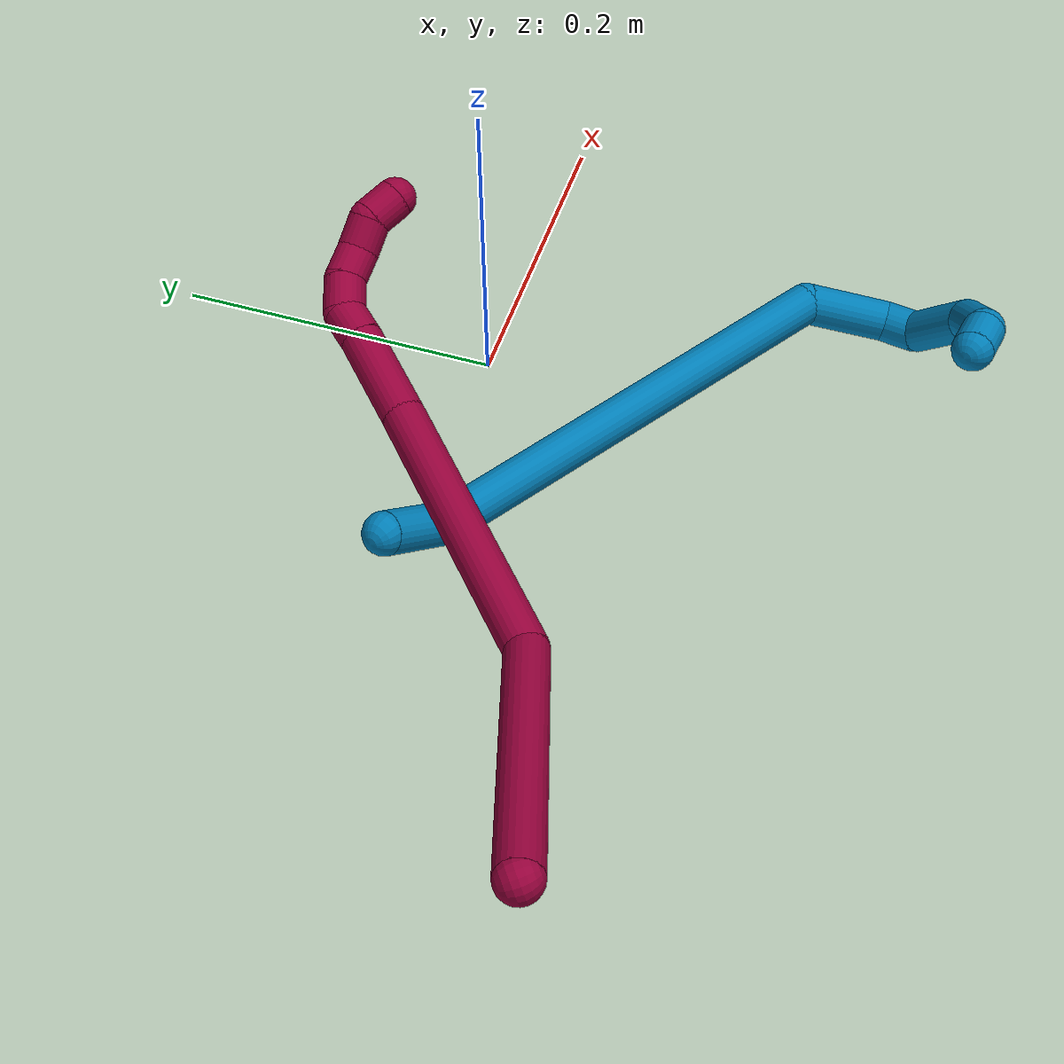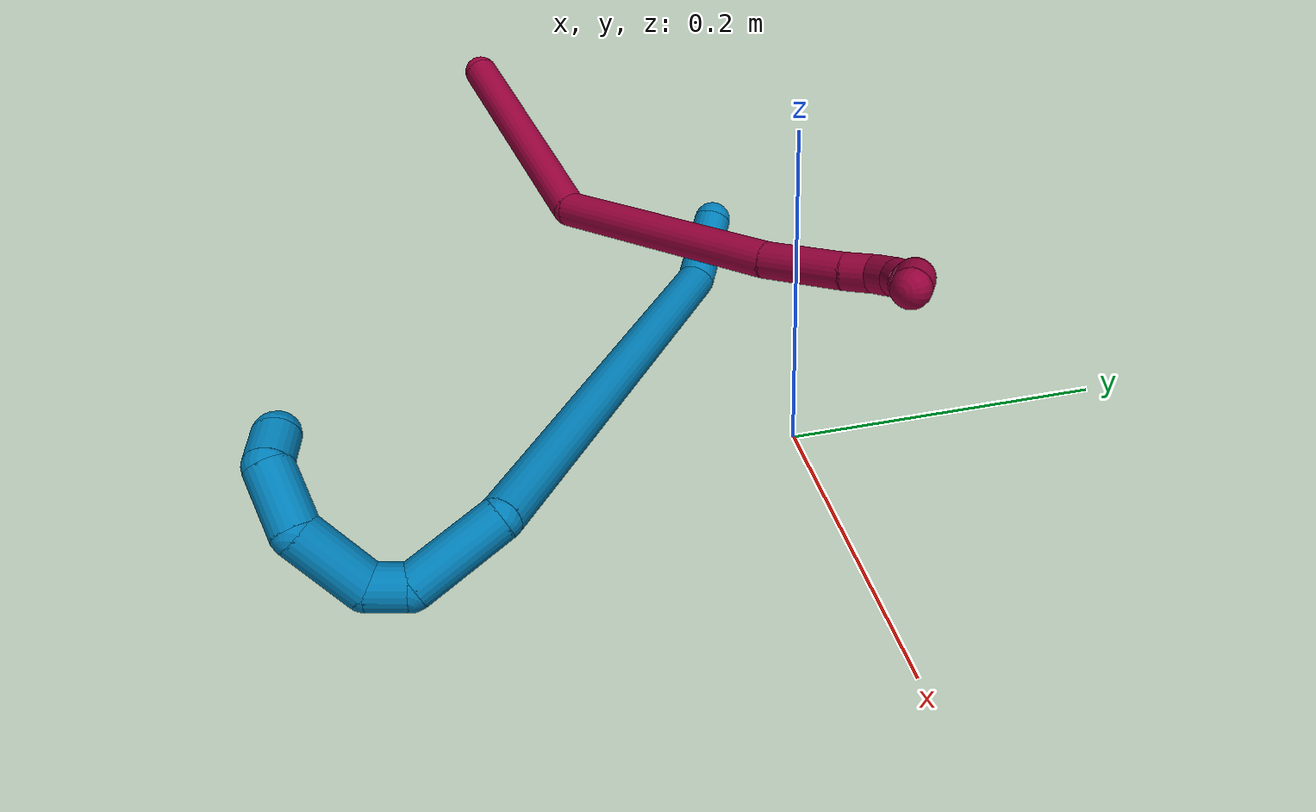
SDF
<sdf version="1.7">
 <world name="default">
  <model name="8">
   <static>0</static>
   <link name="8">
    <collision name="collision-cylinder-e_1_1_4">
     <pose>0.07625 0.030972 0.019901 -0.999687 1.12099 -0.660412</pose>
     <geometry><cylinder><radius>0.0125</radius><length>0.169344</length></cylinder></geometry>
     <surface>
      <friction><ode><mu>1.16</mu><mu2>1.16</mu2><slip1>0</slip1><slip2>0</slip2></ode></friction>
      <contact><ode><kp>1e+06</kp><kd>1</kd><max_vel>0</max_vel><min_depth>0.001</min_depth></ode></contact>
     </surface>
    </collision>
    <visual name="visual-cylinder-e_1_1_4">
     <pose>0.07625 0.030972 0.019901 -0.999687 1.12099 -0.660412</pose>
     <geometry><cylinder><radius>0.0125</radius><length>0.169344</length></cylinder></geometry>
     <material><ambient>0.584314 0 0.227451 1</ambient></material>
    </visual>
    <collision name="collision-cylinder-e_2_4_5">
     <pose>0.207826 0.125162 0.030762 -1.71281 0.713909 -0.812269</pose>
     <geometry><cylinder><radius>0.0125</radius><length>0.168987</length></cylinder></geometry>
     <surface>
      <friction><ode><mu>1.16</mu><mu2>1.16</mu2><slip1>0</slip1><slip2>0</slip2></ode></friction>
      <contact><ode><kp>1e+06</kp><kd>1</kd><max_vel>0</max_vel><min_depth>0.001</min_depth></ode></contact>
     </surface>
    </collision>
    <visual name="visual-cylinder-e_2_4_5">
     <pose>0.207826 0.125162 0.030762 -1.71281 0.713909 -0.812269</pose>
     <geometry><cylinder><radius>0.0125</radius><length>0.168987</length></cylinder></geometry>
     <material><ambient>0.584314 0 0.227451 1</ambient></material>
    </visual>
    <collision name="collision-cylinder-e_3_5_6">
     <pose>0.280141 0.212102 0.018007 -1.7262 0.615781 -0.711755</pose>
     <geometry><cylinder><radius>0.0125</radius><length>0.058827</length></cylinder></geometry>
     <surface>
      <friction><ode><mu>1.16</mu><mu2>1.16</mu2><slip1>0</slip1><slip2>0</slip2></ode></friction>
      <contact><ode><kp>1e+06</kp><kd>1</kd><max_vel>0</max_vel><min_depth>0.001</min_depth></ode></contact>
     </surface>
    </collision>
    <visual name="visual-cylinder-e_3_5_6">
     <pose>0.280141 0.212102 0.018007 -1.7262 0.615781 -0.711755</pose>
     <geometry><cylinder><radius>0.0125</radius><length>0.058827</length></cylinder></geometry>
     <material><ambient>0.584314 0 0.227451 1</ambient></material>
    </visual>
    <collision name="collision-cylinder-e_4_6_7">
     <pose>0.302781 0.244368 0.012241 -1.80623 0.571496 -0.713325</pose>
     <geometry><cylinder><radius>0.0125</radius><length>0.020894</length></cylinder></geometry>
     <surface>
      <friction><ode><mu>1.16</mu><mu2>1.16</mu2><slip1>0</slip1><slip2>0</slip2></ode></friction>
      <contact><ode><kp>1e+06</kp><kd>1</kd><max_vel>0</max_vel><min_depth>0.001</min_depth></ode></contact>
     </surface>
    </collision>
    <visual name="visual-cylinder-e_4_6_7">
     <pose>0.302781 0.244368 0.012241 -1.80623 0.571496 -0.713325</pose>
     <geometry><cylinder><radius>0.0125</radius><length>0.020894</length></cylinder></geometry>
     <material><ambient>0.584314 0 0.227451 1</ambient></material>
    </visual>
    <collision name="collision-cylinder-e_5_7_8">
     <pose>0.313354 0.26187 0.013621 -1.20512 0.474114 -0.329384</pose>
     <geometry><cylinder><radius>0.0125</radius><length>0.021562</length></cylinder></geometry>
     <surface>
      <friction><ode><mu>1.16</mu><mu2>1.16</mu2><slip1>0</slip1><slip2>0</slip2></ode></friction>
      <contact><ode><kp>1e+06</kp><kd>1</kd><max_vel>0</max_vel><min_depth>0.001</min_depth></ode></contact>
     </surface>
    </collision>
    <visual name="visual-cylinder-e_5_7_8">
     <pose>0.313354 0.26187 0.013621 -1.20512 0.474114 -0.329384</pose>
     <geometry><cylinder><radius>0.0125</radius><length>0.021562</length></cylinder></geometry>
     <material><ambient>0.584314 0 0.227451 1</ambient></material>
    </visual>
    <collision name="collision-cylinder-e_6_8_9">
     <pose>0.322144 0.277461 0.02352 -0.797909 0.395512 -0.168541</pose>
     <geometry><cylinder><radius>0.0125</radius><length>0.020081</length></cylinder></geometry>
     <surface>
      <friction><ode><mu>1.16</mu><mu2>1.16</mu2><slip1>0</slip1><slip2>0</slip2></ode></friction>
      <contact><ode><kp>1e+06</kp><kd>1</kd><max_vel>0</max_vel><min_depth>0.001</min_depth></ode></contact>
     </surface>
    </collision>
    <visual name="visual-cylinder-e_6_8_9">
     <pose>0.322144 0.277461 0.02352 -0.797909 0.395512 -0.168541</pose>
     <geometry><cylinder><radius>0.0125</radius><length>0.020081</length></cylinder></geometry>
     <material><ambient>0.584314 0 0.227451 1</ambient></material>
    </visual>
    <collision name="collision-cylinder-e_7_9_10">
     <pose>0.326221 0.291688 0.036563 -0.857348 0.020756 -0.009486</pose>
     <geometry><cylinder><radius>0.0125</radius><length>0.020093</length></cylinder></geometry>
     <surface>
      <friction><ode><mu>1.16</mu><mu2>1.16</mu2><slip1>0</slip1><slip2>0</slip2></ode></friction>
      <contact><ode><kp>1e+06</kp><kd>1</kd><max_vel>0</max_vel><min_depth>0.001</min_depth></ode></contact>
     </surface>
    </collision>
    <visual name="visual-cylinder-e_7_9_10">
     <pose>0.326221 0.291688 0.036563 -0.857348 0.020756 -0.009486</pose>
     <geometry><cylinder><radius>0.0125</radius><length>0.020093</length></cylinder></geometry>
     <material><ambient>0.584314 0 0.227451 1</ambient></material>
    </visual>
    <collision name="collision-cylinder-e_8_10_2">
     <pose>0.329068 0.302551 0.052327 -0.341649 0.264177 -0.045831</pose>
     <geometry><cylinder><radius>0.0125</radius><length>0.020211</length></cylinder></geometry>
     <surface>
      <friction><ode><mu>1.16</mu><mu2>1.16</mu2><slip1>0</slip1><slip2>0</slip2></ode></friction>
      <contact><ode><kp>1e+06</kp><kd>1</kd><max_vel>0</max_vel><min_depth>0.001</min_depth></ode></contact>
     </surface>
    </collision>
    <visual name="visual-cylinder-e_8_10_2">
     <pose>0.329068 0.302551 0.052327 -0.341649 0.264177 -0.045831</pose>
     <geometry><cylinder><radius>0.0125</radius><length>0.020211</length></cylinder></geometry>
     <material><ambient>0.584314 0 0.227451 1</ambient></material>
    </visual>
    <collision name="collision-sphere-2">
     <pose>0.331707 0.30582 0.061519 0 -0 0</pose>
     <geometry><sphere><radius>0.0125</radius></sphere></geometry>
     <surface>
      <friction><ode><mu>1.16</mu><mu2>1.16</mu2><slip1>0</slip1><slip2>0</slip2></ode></friction>
      <contact><ode><kp>1e+06</kp><kd>1</kd><max_vel>0</max_vel><min_depth>0.001</min_depth></ode></contact>
     </surface>
    </collision>
    <visual name="visual-sphere-2">
     <pose>0.331707 0.30582 0.061519 0 -0 0</pose>
     <geometry><sphere><radius>0.0125</radius></sphere></geometry>
     <material><ambient>0.584314 0 0.227451 1</ambient></material>
    </visual>
    <collision name="collision-sphere-10">
     <pose>0.32643 0.299283 0.043136 0 -0 0</pose>
     <geometry><sphere><radius>0.0125</radius></sphere></geometry>
     <surface>
      <friction><ode><mu>1.16</mu><mu2>1.16</mu2><slip1>0</slip1><slip2>0</slip2></ode></friction>
      <contact><ode><kp>1e+06</kp><kd>1</kd><max_vel>0</max_vel><min_depth>0.001</min_depth></ode></contact>
     </surface>
    </collision>
    <visual name="visual-sphere-10">
     <pose>0.32643 0.299283 0.043136 0 -0 0</pose>
     <geometry><sphere><radius>0.0125</radius></sphere></geometry>
     <material><ambient>0.584314 0 0.227451 1</ambient></material>
    </visual>
    <collision name="collision-sphere-9">
     <pose>0.326013 0.284094 0.029989 0 -0 0</pose>
     <geometry><sphere><radius>0.0125</radius></sphere></geometry>
     <surface>
      <friction><ode><mu>1.16</mu><mu2>1.16</mu2><slip1>0</slip1><slip2>0</slip2></ode></friction>
      <contact><ode><kp>1e+06</kp><kd>1</kd><max_vel>0</max_vel><min_depth>0.001</min_depth></ode></contact>
     </surface>
    </collision>
    <visual name="visual-sphere-9">
     <pose>0.326013 0.284094 0.029989 0 -0 0</pose>
     <geometry><sphere><radius>0.0125</radius></sphere></geometry>
     <material><ambient>0.584314 0 0.227451 1</ambient></material>
    </visual>
    <collision name="collision-sphere-4">
     <pose>0.1525 0.061944 0.039801 0 -0 0</pose>
     <geometry><sphere><radius>0.0125</radius></sphere></geometry>
     <surface>
      <friction><ode><mu>1.16</mu><mu2>1.16</mu2><slip1>0</slip1><slip2>0</slip2></ode></friction>
      <contact><ode><kp>1e+06</kp><kd>1</kd><max_vel>0</max_vel><min_depth>0.001</min_depth></ode></contact>
     </surface>
    </collision>
    <visual name="visual-sphere-4">
     <pose>0.1525 0.061944 0.039801 0 -0 0</pose>
     <geometry><sphere><radius>0.0125</radius></sphere></geometry>
     <material><ambient>0.584314 0 0.227451 1</ambient></material>
    </visual>
    <collision name="collision-sphere-1">
     <geometry><sphere><radius>0.0125</radius></sphere></geometry>
     <surface>
      <friction><ode><mu>1.16</mu><mu2>1.16</mu2><slip1>0</slip1><slip2>0</slip2></ode></friction>
      <contact><ode><kp>1e+06</kp><kd>1</kd><max_vel>0</max_vel><min_depth>0.001</min_depth></ode></contact>
     </surface>
    </collision>
    <visual name="visual-sphere-1">
     <geometry><sphere><radius>0.0125</radius></sphere></geometry>
     <material><ambient>0.584314 0 0.227451 1</ambient></material>
    </visual>
    <collision name="collision-sphere-8">
     <pose>0.318276 0.270828 0.017051 0 -0 0</pose>
     <geometry><sphere><radius>0.0125</radius></sphere></geometry>
     <surface>
      <friction><ode><mu>1.16</mu><mu2>1.16</mu2><slip1>0</slip1><slip2>0</slip2></ode></friction>
      <contact><ode><kp>1e+06</kp><kd>1</kd><max_vel>0</max_vel><min_depth>0.001</min_depth></ode></contact>
     </surface>
    </collision>
    <visual name="visual-sphere-8">
     <pose>0.318276 0.270828 0.017051 0 -0 0</pose>
     <geometry><sphere><radius>0.0125</radius></sphere></geometry>
     <material><ambient>0.584314 0 0.227451 1</ambient></material>
    </visual>
    <collision name="collision-sphere-5">
     <pose>0.263152 0.18838 0.021724 0 -0 0</pose>
     <geometry><sphere><radius>0.0125</radius></sphere></geometry>
     <surface>
      <friction><ode><mu>1.16</mu><mu2>1.16</mu2><slip1>0</slip1><slip2>0</slip2></ode></friction>
      <contact><ode><kp>1e+06</kp><kd>1</kd><max_vel>0</max_vel><min_depth>0.001</min_depth></ode></contact>
     </surface>
    </collision>
    <visual name="visual-sphere-5">
     <pose>0.263152 0.18838 0.021724 0 -0 0</pose>
     <geometry><sphere><radius>0.0125</radius></sphere></geometry>
     <material><ambient>0.584314 0 0.227451 1</ambient></material>
    </visual>
    <collision name="collision-sphere-6">
     <pose>0.29713 0.235823 0.014291 0 -0 0</pose>
     <geometry><sphere><radius>0.0125</radius></sphere></geometry>
     <surface>
      <friction><ode><mu>1.16</mu><mu2>1.16</mu2><slip1>0</slip1><slip2>0</slip2></ode></friction>
      <contact><ode><kp>1e+06</kp><kd>1</kd><max_vel>0</max_vel><min_depth>0.001</min_depth></ode></contact>
     </surface>
    </collision>
    <visual name="visual-sphere-6">
     <pose>0.29713 0.235823 0.014291 0 -0 0</pose>
     <geometry><sphere><radius>0.0125</radius></sphere></geometry>
     <material><ambient>0.584314 0 0.227451 1</ambient></material>
    </visual>
    <collision name="collision-sphere-7">
     <pose>0.308432 0.252912 0.010191 0 -0 0</pose>
     <geometry><sphere><radius>0.0125</radius></sphere></geometry>
     <surface>
      <friction><ode><mu>1.16</mu><mu2>1.16</mu2><slip1>0</slip1><slip2>0</slip2></ode></friction>
      <contact><ode><kp>1e+06</kp><kd>1</kd><max_vel>0</max_vel><min_depth>0.001</min_depth></ode></contact>
     </surface>
    </collision>
    <visual name="visual-sphere-7">
     <pose>0.308432 0.252912 0.010191 0 -0 0</pose>
     <geometry><sphere><radius>0.0125</radius></sphere></geometry>
     <material><ambient>0.584314 0 0.227451 1</ambient></material>
    </visual>
    <inertial>
     <pose>0.19454 0.134346 0.024884 0 -0 0</pose>
     <mass>0.5</mass>
     <inertia>
      <ixx>5.2e-05</ixx>
      <ixy>0</ixy>
      <ixz>0</ixz>
      <iyy>0.000207</iyy>
      <iyz>0</iyz>
      <izz>-0.001124</izz>
     </inertia>
    </inertial>
   </link>
   <pose>-0.383527 -0.14748 0.121692 1.32222 0.788227 0.444109</pose>
  </model>
  <model name="9">
   <static>0</static>
   <link name="9">
    <collision name="collision-cylinder-e_1_1_4">
     <pose>0.002414 0.009414 0.023025 -0.388131 0.096751 -0.01903</pose>
     <geometry><cylinder><radius>0.0125</radius><length>0.049984</length></cylinder></geometry>
     <surface>
      <friction><ode><mu>1.16</mu><mu2>1.16</mu2><slip1>0</slip1><slip2>0</slip2></ode></friction>
      <contact><ode><kp>1e+06</kp><kd>1</kd><max_vel>0</max_vel><min_depth>0.001</min_depth></ode></contact>
     </surface>
    </collision>
    <visual name="visual-cylinder-e_1_1_4">
     <pose>0.002414 0.009414 0.023025 -0.388131 0.096751 -0.01903</pose>
     <geometry><cylinder><radius>0.0125</radius><length>0.049984</length></cylinder></geometry>
     <material><ambient>0 0.490196 0.709804 1</ambient></material>
    </visual>
    <collision name="collision-cylinder-e_2_4_5">
     <pose>0.053768 -0.00033 0.171587 0.151445 0.367837 0.028224</pose>
     <geometry><cylinder><radius>0.0125</radius><length>0.272188</length></cylinder></geometry>
     <surface>
      <friction><ode><mu>1.16</mu><mu2>1.16</mu2><slip1>0</slip1><slip2>0</slip2></ode></friction>
      <contact><ode><kp>1e+06</kp><kd>1</kd><max_vel>0</max_vel><min_depth>0.001</min_depth></ode></contact>
     </surface>
    </collision>
    <visual name="visual-cylinder-e_2_4_5">
     <pose>0.053768 -0.00033 0.171587 0.151445 0.367837 0.028224</pose>
     <geometry><cylinder><radius>0.0125</radius><length>0.272188</length></cylinder></geometry>
     <material><ambient>0 0.490196 0.709804 1</ambient></material>
    </visual>
    <collision name="collision-cylinder-e_3_5_6">
     <pose>0.120186 -0.0086 0.314451 -0.561061 0.706875 -0.211803</pose>
     <geometry><cylinder><radius>0.0125</radius><length>0.053827</length></cylinder></geometry>
     <surface>
      <friction><ode><mu>1.16</mu><mu2>1.16</mu2><slip1>0</slip1><slip2>0</slip2></ode></friction>
      <contact><ode><kp>1e+06</kp><kd>1</kd><max_vel>0</max_vel><min_depth>0.001</min_depth></ode></contact>
     </surface>
    </collision>
    <visual name="visual-cylinder-e_3_5_6">
     <pose>0.120186 -0.0086 0.314451 -0.561061 0.706875 -0.211803</pose>
     <geometry><cylinder><radius>0.0125</radius><length>0.053827</length></cylinder></geometry>
     <material><ambient>0 0.490196 0.709804 1</ambient></material>
    </visual>
    <collision name="collision-cylinder-e_4_6_7">
     <pose>0.148216 0.004508 0.332492 -1.25982 1.35335 -1.05937</pose>
     <geometry><cylinder><radius>0.0125</radius><length>0.021612</length></cylinder></geometry>
     <surface>
      <friction><ode><mu>1.16</mu><mu2>1.16</mu2><slip1>0</slip1><slip2>0</slip2></ode></friction>
      <contact><ode><kp>1e+06</kp><kd>1</kd><max_vel>0</max_vel><min_depth>0.001</min_depth></ode></contact>
     </surface>
    </collision>
    <visual name="visual-cylinder-e_4_6_7">
     <pose>0.148216 0.004508 0.332492 -1.25982 1.35335 -1.05937</pose>
     <geometry><cylinder><radius>0.0125</radius><length>0.021612</length></cylinder></geometry>
     <material><ambient>0 0.490196 0.709804 1</ambient></material>
    </visual>
    <collision name="collision-cylinder-e_5_7_8">
     <pose>0.177878 -0.003256 0.32792 2.05761 1.03693 1.51689</pose>
     <geometry><cylinder><radius>0.0125</radius><length>0.044399</length></cylinder></geometry>
     <surface>
      <friction><ode><mu>1.16</mu><mu2>1.16</mu2><slip1>0</slip1><slip2>0</slip2></ode></friction>
      <contact><ode><kp>1e+06</kp><kd>1</kd><max_vel>0</max_vel><min_depth>0.001</min_depth></ode></contact>
     </surface>
    </collision>
    <visual name="visual-cylinder-e_5_7_8">
     <pose>0.177878 -0.003256 0.32792 2.05761 1.03693 1.51689</pose>
     <geometry><cylinder><radius>0.0125</radius><length>0.044399</length></cylinder></geometry>
     <material><ambient>0 0.490196 0.709804 1</ambient></material>
    </visual>
    <collision name="collision-cylinder-e_6_8_9">
     <pose>0.207837 -0.018665 0.308795 2.76809 0.630432 2.09125</pose>
     <geometry><cylinder><radius>0.0125</radius><length>0.036806</length></cylinder></geometry>
     <surface>
      <friction><ode><mu>1.16</mu><mu2>1.16</mu2><slip1>0</slip1><slip2>0</slip2></ode></friction>
      <contact><ode><kp>1e+06</kp><kd>1</kd><max_vel>0</max_vel><min_depth>0.001</min_depth></ode></contact>
     </surface>
    </collision>
    <visual name="visual-cylinder-e_6_8_9">
     <pose>0.207837 -0.018665 0.308795 2.76809 0.630432 2.09125</pose>
     <geometry><cylinder><radius>0.0125</radius><length>0.036806</length></cylinder></geometry>
     <material><ambient>0 0.490196 0.709804 1</ambient></material>
    </visual>
    <collision name="collision-cylinder-e_7_9_2">
     <pose>0.219751 -0.022715 0.284506 -3.0109 0.100797 -1.31338</pose>
     <geometry><cylinder><radius>0.0125</radius><length>0.021185</length></cylinder></geometry>
     <surface>
      <friction><ode><mu>1.16</mu><mu2>1.16</mu2><slip1>0</slip1><slip2>0</slip2></ode></friction>
      <contact><ode><kp>1e+06</kp><kd>1</kd><max_vel>0</max_vel><min_depth>0.001</min_depth></ode></contact>
     </surface>
    </collision>
    <visual name="visual-cylinder-e_7_9_2">
     <pose>0.219751 -0.022715 0.284506 -3.0109 0.100797 -1.31338</pose>
     <geometry><cylinder><radius>0.0125</radius><length>0.021185</length></cylinder></geometry>
     <material><ambient>0 0.490196 0.709804 1</ambient></material>
    </visual>
    <collision name="collision-sphere-2">
     <pose>0.220817 -0.021342 0.274057 0 -0 0</pose>
     <geometry><sphere><radius>0.0125</radius></sphere></geometry>
     <surface>
      <friction><ode><mu>1.16</mu><mu2>1.16</mu2><slip1>0</slip1><slip2>0</slip2></ode></friction>
      <contact><ode><kp>1e+06</kp><kd>1</kd><max_vel>0</max_vel><min_depth>0.001</min_depth></ode></contact>
     </surface>
    </collision>
    <visual name="visual-sphere-2">
     <pose>0.220817 -0.021342 0.274057 0 -0 0</pose>
     <geometry><sphere><radius>0.0125</radius></sphere></geometry>
     <material><ambient>0 0.490196 0.709804 1</ambient></material>
    </visual>
    <collision name="collision-sphere-9">
     <pose>0.218685 -0.024089 0.294955 0 -0 0</pose>
     <geometry><sphere><radius>0.0125</radius></sphere></geometry>
     <surface>
      <friction><ode><mu>1.16</mu><mu2>1.16</mu2><slip1>0</slip1><slip2>0</slip2></ode></friction>
      <contact><ode><kp>1e+06</kp><kd>1</kd><max_vel>0</max_vel><min_depth>0.001</min_depth></ode></contact>
     </surface>
    </collision>
    <visual name="visual-sphere-9">
     <pose>0.218685 -0.024089 0.294955 0 -0 0</pose>
     <geometry><sphere><radius>0.0125</radius></sphere></geometry>
     <material><ambient>0 0.490196 0.709804 1</ambient></material>
    </visual>
    <collision name="collision-sphere-4">
     <pose>0.004828 0.018828 0.04605 0 -0 0</pose>
     <geometry><sphere><radius>0.0125</radius></sphere></geometry>
     <surface>
      <friction><ode><mu>1.16</mu><mu2>1.16</mu2><slip1>0</slip1><slip2>0</slip2></ode></friction>
      <contact><ode><kp>1e+06</kp><kd>1</kd><max_vel>0</max_vel><min_depth>0.001</min_depth></ode></contact>
     </surface>
    </collision>
    <visual name="visual-sphere-4">
     <pose>0.004828 0.018828 0.04605 0 -0 0</pose>
     <geometry><sphere><radius>0.0125</radius></sphere></geometry>
     <material><ambient>0 0.490196 0.709804 1</ambient></material>
    </visual>
    <collision name="collision-sphere-1">
     <geometry><sphere><radius>0.0125</radius></sphere></geometry>
     <surface>
      <friction><ode><mu>1.16</mu><mu2>1.16</mu2><slip1>0</slip1><slip2>0</slip2></ode></friction>
      <contact><ode><kp>1e+06</kp><kd>1</kd><max_vel>0</max_vel><min_depth>0.001</min_depth></ode></contact>
     </surface>
    </collision>
    <visual name="visual-sphere-1">
     <geometry><sphere><radius>0.0125</radius></sphere></geometry>
     <material><ambient>0 0.490196 0.709804 1</ambient></material>
    </visual>
    <collision name="collision-sphere-8">
     <pose>0.196988 -0.013241 0.322636 0 -0 0</pose>
     <geometry><sphere><radius>0.0125</radius></sphere></geometry>
     <surface>
      <friction><ode><mu>1.16</mu><mu2>1.16</mu2><slip1>0</slip1><slip2>0</slip2></ode></friction>
      <contact><ode><kp>1e+06</kp><kd>1</kd><max_vel>0</max_vel><min_depth>0.001</min_depth></ode></contact>
     </surface>
    </collision>
    <visual name="visual-sphere-8">
     <pose>0.196988 -0.013241 0.322636 0 -0 0</pose>
     <geometry><sphere><radius>0.0125</radius></sphere></geometry>
     <material><ambient>0 0.490196 0.709804 1</ambient></material>
    </visual>
    <collision name="collision-sphere-5">
     <pose>0.102707 -0.019489 0.297124 0 -0 0</pose>
     <geometry><sphere><radius>0.0125</radius></sphere></geometry>
     <surface>
      <friction><ode><mu>1.16</mu><mu2>1.16</mu2><slip1>0</slip1><slip2>0</slip2></ode></friction>
      <contact><ode><kp>1e+06</kp><kd>1</kd><max_vel>0</max_vel><min_depth>0.001</min_depth></ode></contact>
     </surface>
    </collision>
    <visual name="visual-sphere-5">
     <pose>0.102707 -0.019489 0.297124 0 -0 0</pose>
     <geometry><sphere><radius>0.0125</radius></sphere></geometry>
     <material><ambient>0 0.490196 0.709804 1</ambient></material>
    </visual>
    <collision name="collision-sphere-6">
     <pose>0.137665 0.002289 0.331778 0 -0 0</pose>
     <geometry><sphere><radius>0.0125</radius></sphere></geometry>
     <surface>
      <friction><ode><mu>1.16</mu><mu2>1.16</mu2><slip1>0</slip1><slip2>0</slip2></ode></friction>
      <contact><ode><kp>1e+06</kp><kd>1</kd><max_vel>0</max_vel><min_depth>0.001</min_depth></ode></contact>
     </surface>
    </collision>
    <visual name="visual-sphere-6">
     <pose>0.137665 0.002289 0.331778 0 -0 0</pose>
     <geometry><sphere><radius>0.0125</radius></sphere></geometry>
     <material><ambient>0 0.490196 0.709804 1</ambient></material>
    </visual>
    <collision name="collision-sphere-7">
     <pose>0.158768 0.006728 0.333205 0 -0 0</pose>
     <geometry><sphere><radius>0.0125</radius></sphere></geometry>
     <surface>
      <friction><ode><mu>1.16</mu><mu2>1.16</mu2><slip1>0</slip1><slip2>0</slip2></ode></friction>
      <contact><ode><kp>1e+06</kp><kd>1</kd><max_vel>0</max_vel><min_depth>0.001</min_depth></ode></contact>
     </surface>
    </collision>
    <visual name="visual-sphere-7">
     <pose>0.158768 0.006728 0.333205 0 -0 0</pose>
     <geometry><sphere><radius>0.0125</radius></sphere></geometry>
     <material><ambient>0 0.490196 0.709804 1</ambient></material>
    </visual>
    <inertial>
     <pose>0.089261 -0.002595 0.207836 0 -0 0</pose>
     <mass>0.5</mass>
     <inertia>
      <ixx>0.001665</ixx>
      <ixy>0</ixy>
      <ixz>0</ixz>
      <iyy>0.001757</iyy>
      <iyz>0</iyz>
      <izz>-0.000378</izz>
     </inertia>
    </inertial>
   </link>
   <pose>-0.184332 -0.005147 0.063727 -1.82937 -0.279421 -1.78925</pose>
  </model>
 </world>
</sdf>
